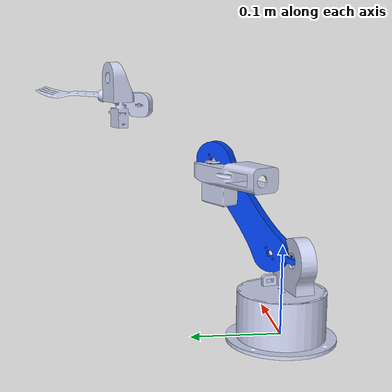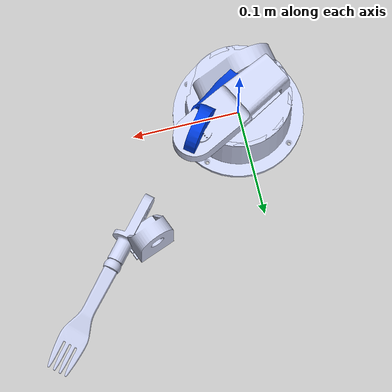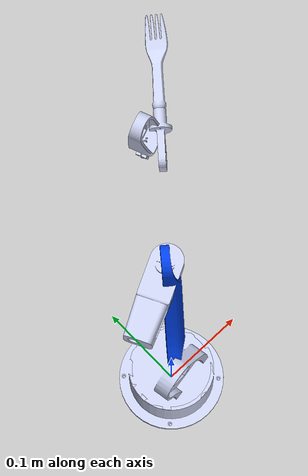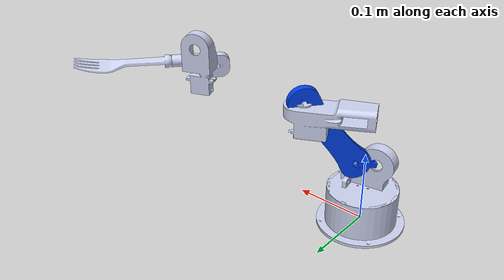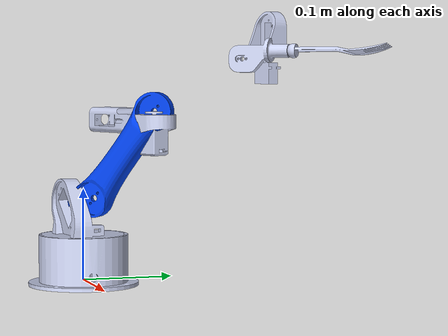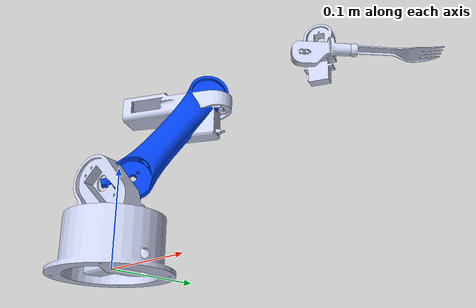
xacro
<?xml version="1.0"?>
<robot xmlns:xacro="http://www.ros.org/wiki/xacro" name="robot_arm">

    <!-- Xacro arguments -->
    <xacro:arg name="robot_name" default="robot_arm"/>
    <xacro:arg name="prefix" default=""/>
    <xacro:arg name="add_world" default="true"/>
    <xacro:arg name="base_link" default="base_link"/>
    <xacro:arg name="base_type" default="fixed"/>
    <xacro:arg name="flange_link" default="link_6"/>
    <xacro:arg name="use_camera" default="false"/>
    <xacro:arg name="use_tray" default="false"/>
    <xacro:arg name="use_gazebo" default="false"/>
    <xacro:arg name="use_simulation" default="false"/>

    <!-- Import arm urdf file -->
    <xacro:include filename="$(find robot_arm_description)/urdf/robot/arm.urdf" />

    <!-- Include ROS 2 control configuration -->
    <xacro:include filename="$(find robot_arm_description)/urdf/control/robot_arm_ros2_control.urdf.xacro" />

    <!-- Load ROS 2 control macro (works for both Gazebo and real hardware) -->
    <xacro:robot_arm_ros2_control
        prefix="$(arg prefix)"
        flange_link="$(arg flange_link)"
        use_gazebo="$(arg use_gazebo)"
        use_simulation="$(arg use_simulation)"/>

    <!-- Include Gazebo-specific plugins only when using Gazebo -->
    <xacro:if value="$(arg use_gazebo)">
        <xacro:include filename="$(find robot_arm_description)/urdf/control/gazebo_sim_ros2_control.urdf.xacro" />

        <!-- Load Gazebo ROS 2 control plugin -->
        <xacro:load_gazebo_sim_ros2_control_plugin
            robot_name="$(arg robot_name)"
            use_gazebo="$(arg use_gazebo)"/>
    </xacro:if>

    <xacro:if value="$(arg use_tray)">
        <xacro:include filename="$(find robot_arm_description)/urdf/printed_tray.urdf.xacro" />
    </xacro:if>

    <!-- Include camera if use_camera is true -->
    <xacro:if value="$(arg use_camera)">
        <xacro:include filename="$(find robot_arm_description)/urdf/sensors/fixed_rgbd_camera.urdf.xacro" />
    </xacro:if>

</robot>

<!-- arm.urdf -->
<robot
  name="robot_arm">

  <link name="world"/>

  <joint name="world_joint" type="fixed">
    <parent link="world"/>
    <child link="base_link"/>
    <origin xyz="0 0 0" rpy="0 0 0"/>
  </joint>

  <link
    name="base_link">
    <inertial>
      <origin
        xyz="0.000117196159259592 7.68725232080936E-09 0.0163035726629275"
        rpy="0 0 0" />
      <mass
        value="0.0960374647687132" />
      <inertia
        ixx="0.000127992374265441"
        ixy="6.84507669967454E-11"
        ixz="3.91396755618814E-06"
        iyy="0.000137660900428952"
        iyz="4.47337777707664E-12"
        izz="0.000207983638444363" />
    </inertial>
    <visual>
      <origin
        xyz="0 0 0"
        rpy="0 0 0" />
      <geometry>
        <mesh
          filename="package://robot_arm_description/meshes/base_link.STL" />
      </geometry>
      <material
        name="">
        <color
          rgba="0.792156862745098 0.819607843137255 0.933333333333333 1" />
      </material>
    </visual>
    <collision>
      <origin
        xyz="0 0 0"
        rpy="0 0 0" />
      <geometry>
        <mesh
          filename="package://robot_arm_description/meshes/base_link.STL" />
      </geometry>
    </collision>
  </link>
  <link
    name="link_1">
    <inertial>
      <origin
        xyz="-0.00414864263261154 0.00510638589359674 0.0172893971363357"
        rpy="0 0 0" />
      <mass
        value="0.0680382266926049" />
      <inertia
        ixx="5.3594660634226E-05"
        ixy="-6.27203699334427E-06"
        ixz="1.13231646661721E-07"
        iyy="4.95562409415516E-05"
        iyz="-8.10968730920396E-06"
        izz="5.467636163819E-05" />
    </inertial>
    <visual>
      <origin
        xyz="0 0 0"
        rpy="0 0 0" />
      <geometry>
        <mesh
          filename="package://robot_arm_description/meshes/link_1.STL" />
      </geometry>
      <material
        name="">
        <color
          rgba="0.792156862745098 0.819607843137255 0.933333333333333 1" />
      </material>
    </visual>
    <collision>
      <origin
        xyz="0 0 0"
        rpy="0 0 0" />
      <geometry>
        <mesh
          filename="package://robot_arm_description/meshes/link_1.STL" />
      </geometry>
    </collision>
  </link>
  <joint
    name="joint_1"
    type="continuous">
    <origin
      xyz="0 0 0.05"
      rpy="0 0 0" />
    <parent
      link="base_link" />
    <child
      link="link_1" />
    <axis
      xyz="0 0 1" />
  <!-- No position limits: the base rotates a full 360 deg. -->
  <limit effort="10" velocity="1.5"/>
  </joint>
  <link
    name="link_2">
    <inertial>
      <origin
        xyz="0.0249750944156842 0.0249772859698909 0.0468961083176771"
        rpy="0 0 0" />
      <mass
        value="0.064396141841368" />
      <inertia
        ixx="9.61544573728887E-05"
        ixy="-1.96129401588288E-05"
        ixz="-2.93770475865757E-05"
        iyy="8.73371118665447E-05"
        iyz="-3.67498044712087E-05"
        izz="4.4507328864253E-05" />
    </inertial>
    <visual>
      <origin
        xyz="0 0 0"
        rpy="0 0 0" />
      <geometry>
        <mesh
          filename="package://robot_arm_description/meshes/link_2.STL" />
      </geometry>
      <material
        name="">
        <color
          rgba="0 0.254901960784314 0.92156862745098 1" />
      </material>
    </visual>
    <collision>
      <origin
        xyz="0 0 0"
        rpy="0 0 0" />
      <geometry>
        <mesh
          filename="package://robot_arm_description/meshes/link_2.STL" />
      </geometry>
    </collision>
  </link>
  <joint
    name="joint_2"
    type="revolute">
    <origin
      xyz="0.00873499271692548 0.0108362687265375 0.040276480175933"
      rpy="0 0 0" />
    <parent
      link="link_1" />
    <child
      link="link_2" />
    <axis
      xyz="0.778551124052 -0.627581187765668 0" />
  <limit lower="-1.808796" upper="1.332796" effort="10" velocity="1.5"/>
  </joint>
  <link
    name="link_3">
    <inertial>
      <origin
        xyz="0.0128052472574296 0.0340647193385334 0.0186847213480272"
        rpy="0 0 0" />
      <mass
        value="0.0502681192798898" />
      <inertia
        ixx="4.32011391528895E-05"
        ixy="-1.87968422837148E-05"
        ixz="-1.18045403059582E-05"
        iyy="3.45165558874064E-05"
        iyz="-1.48619379367344E-05"
        izz="4.43190576137703E-05" />
    </inertial>
    <visual>
      <origin
        xyz="0 0 0"
        rpy="0 0 0" />
      <geometry>
        <mesh
          filename="package://robot_arm_description/meshes/link_3.STL" />
      </geometry>
      <material
        name="">
        <color
          rgba="0.792156862745098 0.819607843137255 0.933333333333333 1" />
      </material>
    </visual>
    <collision>
      <origin
        xyz="0 0 0"
        rpy="0 0 0" />
      <geometry>
        <mesh
          filename="package://robot_arm_description/meshes/link_3.STL" />
      </geometry>
    </collision>
  </link>
  <joint
    name="joint_3"
    type="revolute">
    <origin
      xyz="0.0452765198294633 0.0561681677105227 0.0958914682762493"
      rpy="0 0 0" />
    <parent
      link="link_2" />
    <child
      link="link_3" />
    <axis
      xyz="-0.778551124051999 0.62758118776567 0" />
  <limit lower="-1.943796" upper="1.197796" effort="10" velocity="1.5"/>
  </joint>
  <link
    name="link_4">
    <inertial>
      <origin
        xyz="-0.0117718696694758 -0.0224594299210791 -0.00731996582076389"
        rpy="0 0 0" />
      <mass
        value="0.016499491436809" />
      <inertia
        ixx="3.66487581324487E-06"
        ixy="-1.13581818040864E-06"
        ixz="-5.12400994022922E-07"
        iyy="4.28053026614363E-06"
        iyz="-3.05400205956593E-07"
        izz="3.60163959371384E-06" />
    </inertial>
    <visual>
      <origin
        xyz="0 0 0"
        rpy="0 0 0" />
      <geometry>
        <mesh
          filename="package://robot_arm_description/meshes/link_4.STL" />
      </geometry>
      <material
        name="">
        <color
          rgba="0.792156862745098 0.819607843137255 0.933333333333333 1" />
      </material>
    </visual>
    <collision>
      <origin
        xyz="0 0 0"
        rpy="0 0 0" />
      <geometry>
        <mesh
          filename="package://robot_arm_description/meshes/link_4.STL" />
      </geometry>
    </collision>
  </link>
  <joint
    name="joint_4"
    type="revolute">
    <origin
      xyz="0.066053819111936 0.100267943565289 0.0584895163370014"
      rpy="0 0 0" />
    <parent
      link="link_3" />
    <child
      link="link_4" />
    <axis
      xyz="0.552264856359974 0.685116815282897 0.474993134525457" />
  <limit lower="0.000000" upper="3.141593" effort="10" velocity="1.5"/>
  </joint>
  <link
    name="link_5">
    <inertial>
      <origin
        xyz="-0.0512259253993248 -0.0600862766687876 -0.00480330153133091"
        rpy="0 0 0" />
      <mass
        value="0.0122628916627226" />
      <inertia
        ixx="3.02510506493144E-06"
        ixy="-1.78877095938349E-06"
        ixz="-4.78051886241324E-07"
        iyy="2.40088202838795E-06"
        iyz="-6.05353933747182E-07"
        izz="3.9470456236568E-06" />
    </inertial>
    <visual>
      <origin
        xyz="0.0639420416 0.0759886404 0.0116150426"
        rpy="0 0 0" />
      <geometry>
        <mesh
          filename="package://robot_arm_description/meshes/link_5.STL" />
      </geometry>
      <material
        name="">
        <color
          rgba="0.792156862745098 0.819607843137255 0.933333333333333 1" />
      </material>
    </visual>
    <collision>
      <origin
        xyz="0.0639420416 0.0759886404 0.0116150426"
        rpy="0 0 0" />
      <geometry>
        <mesh
          filename="package://robot_arm_description/meshes/link_5.STL" />
      </geometry>
    </collision>
  </link>
  <joint
    name="joint_5"
    type="revolute">
    <origin
      xyz="0.001935 -0.026272 -0.004657"
      rpy="0 0 0" />
    <parent
      link="link_4" />
    <child
      link="link_5" />
    <axis
      xyz="-0.7748550616 0.6320449991 0.00816229119891543" />
  <limit lower="-1.570796" upper="1.570796" effort="10" velocity="1.5"/>
  </joint>
  <link
    name="link_6">
    <inertial>
      <origin
        xyz="-0.0101934963348007 -0.0117464957039731 0.00033075177043812"
        rpy="0 0 0" />
      <mass
        value="0.00291124967087628" />
      <inertia
        ixx="6.19055743826587E-07"
        ixy="-4.62957237829888E-07"
        ixz="-6.95310132008666E-10"
        iyy="4.82892780554864E-07"
        iyz="1.26580186551905E-08"
        izz="1.05766876849935E-06" />
    </inertial>
    <visual>
      <origin
        xyz="0 0 0"
        rpy="0 0 0" />
      <geometry>
        <mesh
          filename="package://robot_arm_description/meshes/link_6.STL" />
      </geometry>
      <material
        name="">
        <color
          rgba="0.792156862745098 0.819607843137255 0.933333333333333 1" />
      </material>
    </visual>
    <collision>
      <origin
        xyz="0 0 0"
        rpy="0 0 0" />
      <geometry>
        <mesh
          filename="package://robot_arm_description/meshes/link_6.STL" />
      </geometry>
    </collision>
  </link>
<joint name="joint_6" type="continuous">
  <origin xyz="0.0639420416 0.0759886404 0.0116150426" rpy="0 0 0"/>
  <parent link="link_5"/>
  <child link="link_6"/>
  <axis xyz="0.65067 0.75931 0.0081623"/>
<limit effort="10" velocity="1.5"/>
  </joint>

  <!-- ros2_control is added via arm.urdf.xacro + robot_arm_ros2_control.urdf.xacro -->

</robot>
